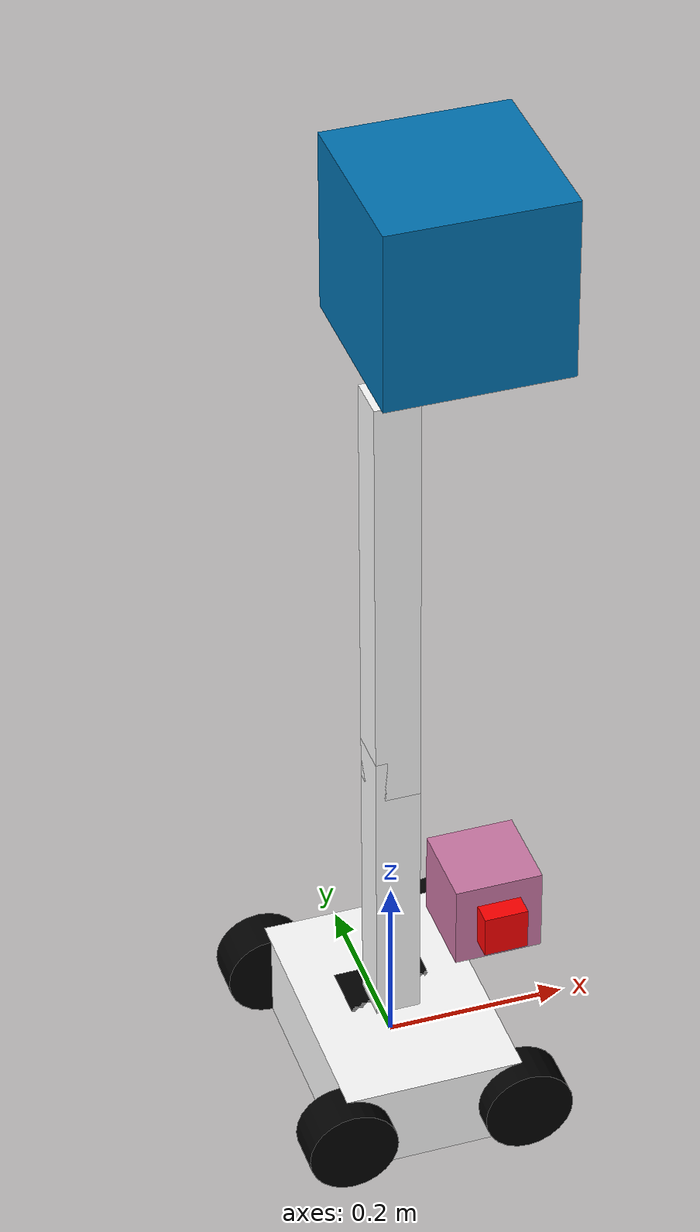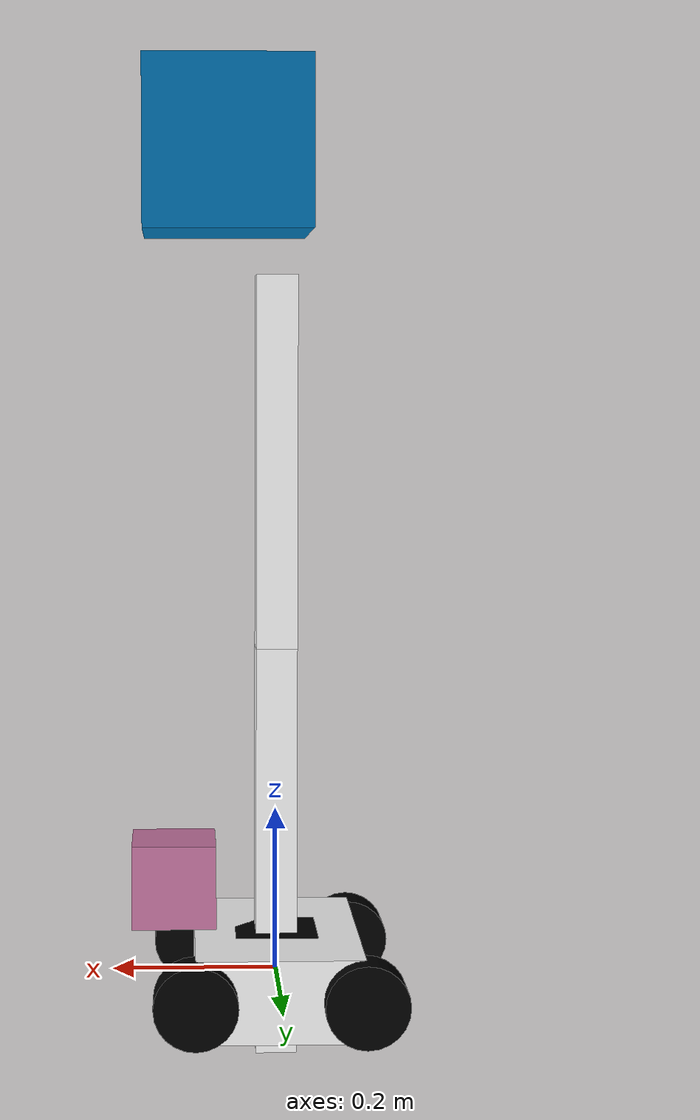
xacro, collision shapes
<?xml version="1.0"?>

<robot xmlns:xacro="http://www.ros.org/wiki/xacro"
       xmlns:sensor="http://playerstage.sourceforge.net/gazebo/xmlschema/#sensor"
       xmlns:controller="http://playerstage.sourceforge.net/gazebo/xmlschema/#controller"
       xmlns:interface="http://playerstage.sourceforge.net/gazebo/xmlschema/#interface"

	   name="robot1_xacro">

	<!--constantes -->
	<xacro:property name="length_wheel" value="0.05" />
	<xacro:property name="radius_wheel" value="0.05" />
	<xacro:property name="camera_link" value="0.05" />

	<!--funcion de inercia constante -->
	<xacro:macro name="default_inertial" params="mass">
    	<inertial>
			<mass value="${mass}" />
			<inertia ixx="1.0" ixy="0.0" ixz="0.0"
                               iyy="1.0" iyz="0.0"
                               izz="1.0" />
    	</inertial>
	</xacro:macro>

	<!-- Funcion de transmision para poder implementar controlador-->
	<xacro:macro name="transmission_block" params="joint_name">
		<transmission name="tran1">
			<type>transmission_interface/SimpleTransmission</type>
			<joint name="${joint_name}">
				<hardwareInterface>hardware_interface/EffortJointInterface</hardwareInterface>
			</joint>
			<actuator name="motor1">
				<hardwareInterface>hardware_interface/EffortJointInterface</hardwareInterface>
				<mechanicalReduction>1</mechanicalReduction>
			</actuator>
	  	</transmission>
	</xacro:macro>

	<!--Base para sensor hokuyo -->
	<link name="base_footprint">
   		<visual>
			<geometry>
      			<box size="0.001 0.001 0.001"/>
     		</geometry>
			<origin rpy="0 0 0" xyz="0 0 0"/>
			<material name="white">
				<color rgba="1 1 1 1"/>
			</material>
   		</visual>
 	</link>

	<joint name="base_footprint_joint" type="fixed">
		<origin xyz="0 0 0"/>
		<parent link="base_footprint"/>
		<child link="base_link"/>
	</joint>

    <!-- ************* DESCRIPCIÓN ROBOT ************** -->

	<!--eslabon base (padre) -->
	<link name="base_link">
   		<visual>
			<geometry>
      			<box size="0.2 .3 .1"/>
     		</geometry>
			<origin rpy="0 0 1.54" xyz="0 0 0.05"/>
			<material name="white">
				<color rgba="1 1 1 1"/>
			</material>
   		</visual>
		<collision>
			<geometry>
       			<box size="0.2 .3 0.1"/>
			</geometry>
		</collision>
		<xacro:default_inertial mass="70"/>
 	</link>

	<!--funcion ruedas -->
	<xacro:macro name="wheel" params="n x y z">
 	<link name="wheel_${n}">
   		<visual>
     		<geometry>
       			<cylinder length="${length_wheel}" radius="${radius_wheel}"/>
     		</geometry>
			<origin rpy="0 0 0" xyz="0 0 0"/>
   			<material name="black">
				<color rgba="0 0 0 1"/>
			</material>
		</visual>
		<collision>
			<geometry>
       			<cylinder length="${length_wheel}" radius="${radius_wheel}"/>
			</geometry>
		</collision>
		<xacro:default_inertial mass="5"/>
 	</link>

	 <joint name="base_to_wheel${n}" type="continuous">
	   <parent link="base_link"/>
	   <child link="wheel_${n}"/>
	   <origin rpy="${pi/2} 0 0" xyz="${x} ${y} ${z}"/>
	   <axis xyz="0 0 1" />
	 </joint>
	</xacro:macro>

	<!--se llama la funcion -->
	<xacro:wheel n="1" x="0.1" y="0.15" z="0"/>
	<xacro:wheel n="2" x="-0.1" y="0.15" z="0"/>
	<xacro:wheel n="3" x="0.1" y="-0.15" z="0"/>
	<xacro:wheel n="4" x="-0.1" y="-0.15" z="0"/>

	<!--codigo para llamar el archivo .gazebo que cambia el color y configura sensores etc -->
	<xacro:include filename="$(find robot1_description)/urdf/robot.gazebo"/>

	<!--creo la base del brazo -->
	<link name="arm_base">
   		<visual>
     		<geometry>
       			<box size="0.1 .1 .1"/>
     		</geometry>
			<origin rpy="0 0 0" xyz="0 0 0.1"/>
			<material name="black">
				<color rgba="0 0 0 1"/>
			</material>
   		</visual>
		<collision>
			<geometry>
       			<box size="0.1 .1 .1"/>
			</geometry>
		</collision>
		<xacro:default_inertial mass="50"/>
 	</link>

 	<!-- juntura brazo a base-->
	<joint name="base_to_arm_base" type="continuous">
		<parent link="base_link"/>
		<child link="arm_base"/>
		<axis xyz="0 0 1"/>
		<origin xyz="0 0 0"/>
	</joint>

	<!-- funcion para eslabones  1 y 2 -->
	<xacro:macro name="arm" params="n x y z">
	<link name="arm_${n}">
   		<visual>
     		<geometry>
       			<box size="0.05 .05 0.5"/>
     		</geometry>
			<origin rpy="0 0 0" xyz="${x} ${y} ${z}"/>
			<material name="white">
				<color rgba="1 1 1 1"/>
			</material>
   		</visual>
		<collision>
			<geometry>
       			<box size="0.05 .05 0.5"/>
			</geometry>
		</collision>
		<xacro:default_inertial mass="2"/>
 	</link>
 	</xacro:macro>

 	<xacro:arm n="1" x="0" y="0" z="0.25"/>
 	<xacro:arm n="2" x="0.06" y="0" z="0.15"/>

	<!-- union brazo a base-->
	<joint name="arm_1_to_arm_base" type="fixed">
		<parent link="arm_base"/>
		<child link="arm_1"/>
		<axis xyz="1 0 0"/>
		<origin xyz="0 0 0.15"/>
		<limit effort ="1000.0" lower="-1.0" upper="1.0" velocity="0.5"/>
	</joint>

	<!-- union eslabon 1 a eslabon 2 -->
	<joint name="arm_2_to_arm_1" type="revolute">
		<parent link="arm_1"/>
		<child link="arm_2"/>
		<axis xyz="1 0 0"/>
		<origin xyz="0.0 0 0.45"/>
		<limit effort ="1000.0" lower="-2.5" upper="2.5" velocity="0.5"/>
	</joint>

	<!-- funcion para union sujetadores -->
	<xacro:macro name="gripper_joint" params="lr x y z">
	  <joint name="${lr}_gripper_joint" type="revolute">
	    <axis xyz="${x} ${y} ${z}"/>
	    <limit effort="1000.0" lower="0.0" upper="0.548" velocity="0.5"/>
	    <origin rpy="0 -1.57 0" xyz="0.06 0 0.4"/>
	    <parent link="arm_2"/>
	    <child link="${lr}_gripper"/>
	  </joint>
	</xacro:macro>

	<xacro:gripper_joint lr="left" x="0" y="0" z="1"/>
	<xacro:gripper_joint lr="right" x="0" y="0" z="-1"/>

  	<!-- funcion para sujetadores -->
	<xacro:macro name="lr_gripper" params="lr r p y">
	  <link name="${lr}_gripper">
	    <visual>
	      <origin rpy="${r} ${p} ${y}" xyz="0 0 0"/>
	      <geometry>
		<mesh filename="package://pr2_description/meshes/gripper_v0/l_finger.dae"/>
	      </geometry>
	    </visual>
		<collision>
			<geometry>
	       		<box size="0.1 .1 .1"/>
			</geometry>
		</collision>
		<xacro:default_inertial mass="0.1"/>
	  </link>
	  </xacro:macro>

	  <xacro:lr_gripper lr="left" r="0" p="0" y="0"/>
	  <xacro:lr_gripper lr="right" r="-3.1415" p="0" y="0"/>

	<!-- Funcion union para punta sujetadores-->
	<xacro:macro name="lr_tip_joint" params="lr" >
	  <joint name="${lr}_tip_joint" type="fixed">
	    <parent link="${lr}_gripper"/>
	    <child link="${lr}_tip"/>
	  </joint>
	  </xacro:macro>

	  <xacro:lr_tip_joint lr="left"/>
	  <xacro:lr_tip_joint lr="right"/>

	<!-- funcion para punta sujetador-->
	  <xacro:macro name="lr_tip" params="lr r p y x yy z sx sy sz">
		<link name="${lr}_tip">
	    <visual>
	      <origin rpy="${r} ${p} ${y}" xyz="${x} ${yy} ${z}"/>
	      <geometry>
		<mesh filename="package://pr2_description/meshes/gripper_v0/l_finger_tip.dae"/>
	      </geometry>
	    </visual>
		<collision>
			<geometry>
	       		<box size="${sx} ${sy} ${sz}"/>
			</geometry>
		</collision>
		<xacro:default_inertial mass="1"/>
	  </link>
	  </xacro:macro>

	  <xacro:lr_tip lr="left" r="0" p="0" y="0" x="0.09137 " yy="0.00495" z="0" sx="0.1" sy="0.1" sz="0.1"/>
	  <xacro:lr_tip lr="right" r="-3.1415" p="0" y="0" x="0.09137 " yy="0.00495" z="0" sx="0.2" sy="0.2" sz="0.2"/>

	  <!-- SENSORES -->
	   <!-- Camera joint-->
	  <joint name="camera_joint" type="fixed">
		<axis xyz="0 1 0" />
		<origin xyz="0.125 0 0.125" rpy="0 0 0"/>
		<parent link="base_link"/>
		<child link="camera_link"/>
	  </joint>

	  <!-- Camera -->
	  <link name="camera_link">
		<collision>
		  <origin xyz="0 0 0" rpy="0 0 0"/>
		  <geometry>
		<box size="${camera_link} ${camera_link} ${camera_link}"/>
		  </geometry>
		</collision>

		<visual>
		  <origin xyz="0 0 0" rpy="0 0 0"/>
		  <geometry>
		<box size="${camera_link} ${camera_link} ${camera_link}"/>
		  </geometry>
		  <material name="red">
		  	<color rgba="1 0 0 1"/>
		  </material>
		</visual>

		<inertial>
		  <mass value="1e-5" />
		  <origin xyz="0 0 0" rpy="0 0 0"/>
		  <inertia ixx="1e-6" ixy="0" ixz="0" iyy="1e-6" iyz="0" izz="1e-6" />
		</inertial>
	  </link>

		<!-- Hokuyo-->
	  <link name="hokuyo_link">
      <collision>
        <origin xyz="0 0 0" rpy="0 0 0"/>
        <geometry>
          <box size="0.1 0.1 0.1"/>
        </geometry>
      </collision>

      <visual>
        <origin xyz="0 0 0" rpy="0 0 0"/>
        <geometry>
        	<!--mesh filename="package://turtlebot_description/meshes/sensors/hokuyo.dae"/-->
          <mesh filename="package://robot1_description/meshes/hokuyo.dae"/>
        </geometry>
      </visual>

      <inertial>
        <mass value="1e-5" />
        <origin xyz="0 0 0" rpy="0 0 0"/>
        <inertia ixx="1e-6" ixy="0" ixz="0" iyy="1e-6" iyz="0" izz="1e-6" />
      </inertial>
    </link>

    <joint name="hokuyo_joint" type="fixed">
      <axis xyz="0 1 0" />
      <origin xyz="0.125 0.05 0.125" rpy="0 0 0"/>
      <parent link="base_link"/>
      <child link="hokuyo_link"/>
     </joint>

     <gazebo>
  <!-- Driver controlador-->
  <plugin name="skid_steer_drive_controller" filename="libgazebo_ros_skid_steer_drive.so">
    <updateRate>100.0</updateRate>
    <robotNamespace>/</robotNamespace>
    <leftFrontJoint>base_to_wheel1</leftFrontJoint>
    <rightFrontJoint>base_to_wheel2</rightFrontJoint>
    <leftRearJoint>base_to_wheel3</leftRearJoint>
    <rightRearJoint>base_to_wheel4</rightRearJoint>
    <wheelSeparation>0.4</wheelSeparation>
    <wheelDiameter>0.1</wheelDiameter>
    <robotBaseFrame>base_link</robotBaseFrame>
    <torque>1</torque>
    <topicName>cmd_vel</topicName>
    <broadcastTF>false</broadcastTF>
  </plugin>
</gazebo>

 <xacro:transmission_block joint_name="base_to_arm_base"/>
 <xacro:transmission_block joint_name="arm_2_to_arm_1"/>
 <xacro:transmission_block joint_name="left_gripper_joint"/>
 <xacro:transmission_block joint_name="right_gripper_joint"/>

</robot>
